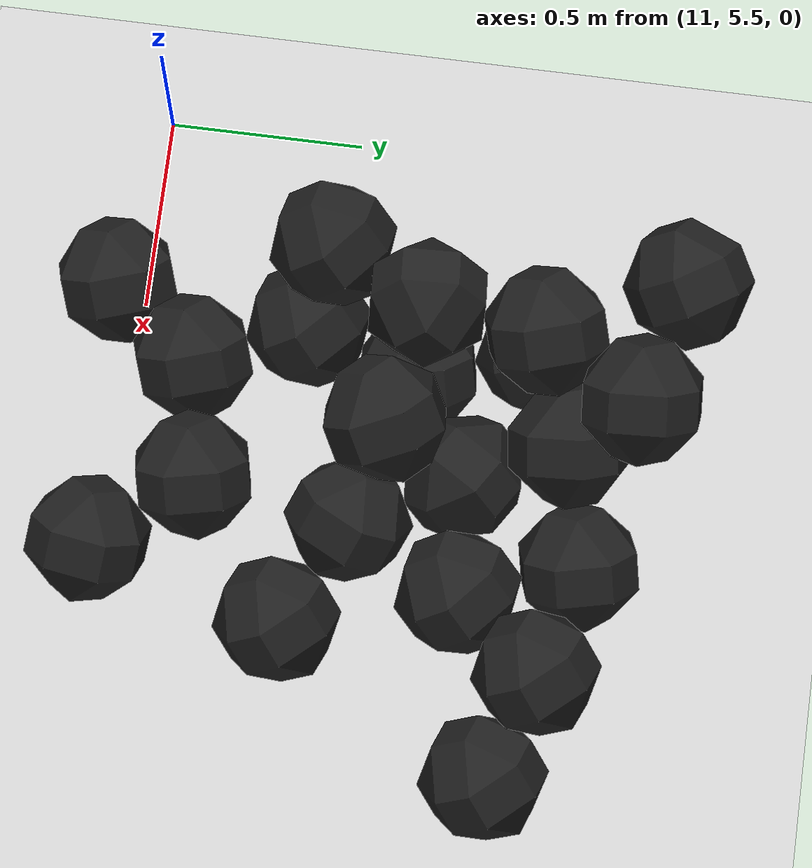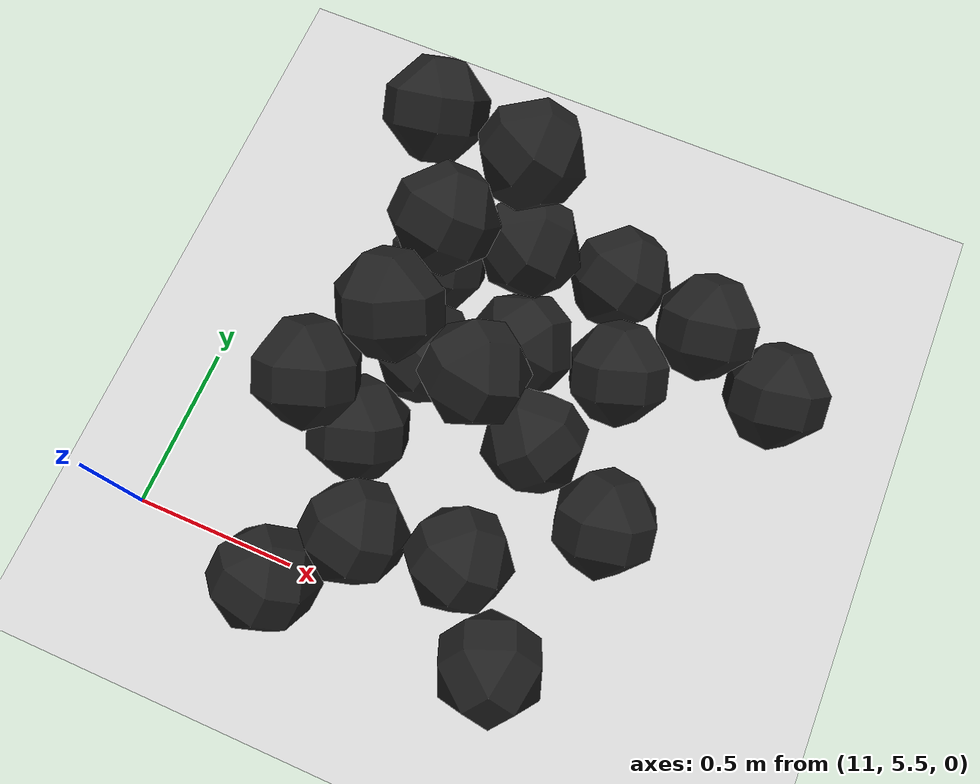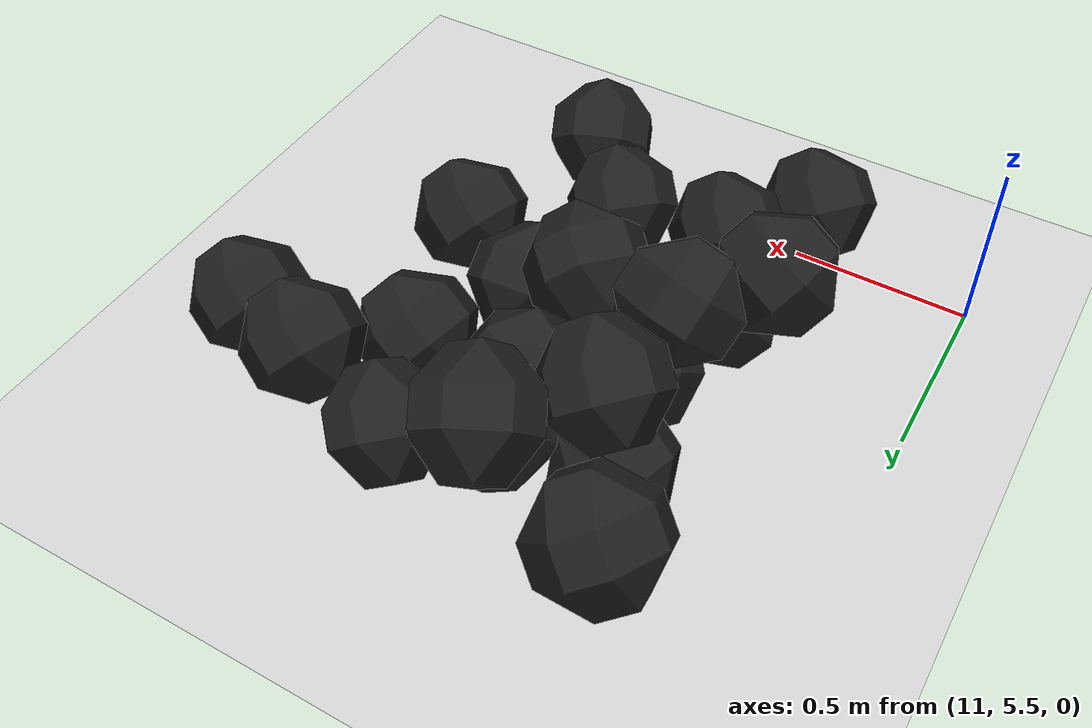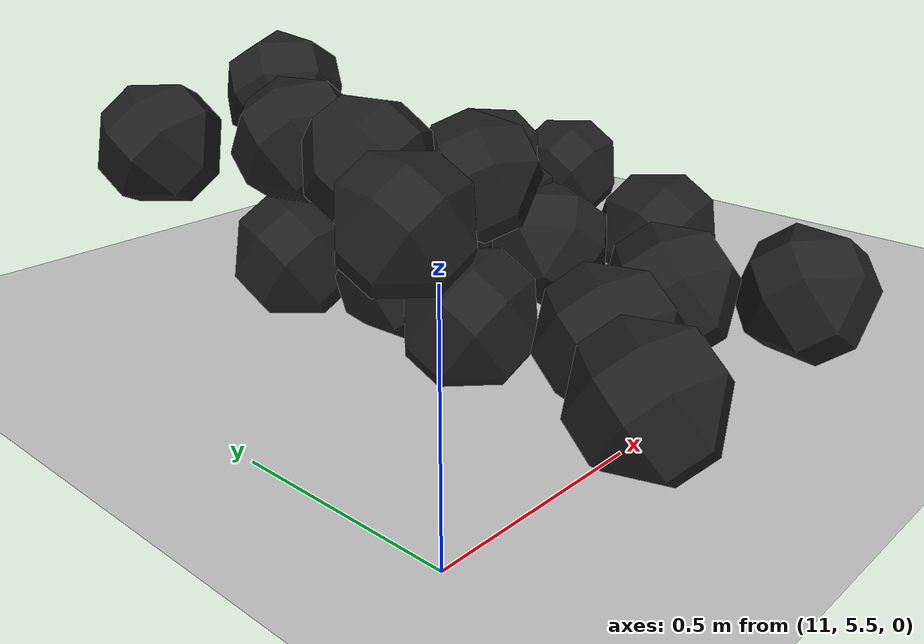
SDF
<sdf version="1.7">
 <world name="default">
  <model name="ground_plane">
   <static>1</static>
   <link name="link">
    <collision name="collision">
     <geometry><plane><normal>0 0 1</normal><size>100 100</size></plane></geometry>
     <surface><friction><ode><mu>100</mu><mu2>50</mu2></ode></friction></surface>
    </collision>
    <visual name="visual">
     <cast_shadows>0</cast_shadows>
     <geometry><plane><normal>0 0 1</normal><size>100 100</size></plane></geometry>
     <material>
      <script><uri>file://media/materials/scripts/gazebo.material</uri><name>Gazebo/Grey</name></script>
     </material>
    </visual>
   </link>
  </model>
  <model name="haoduomiantiaa_3">
   <link name="link_0">
    <inertial>
     <mass>0.2</mass>
     <inertia>
      <ixx>0.166667</ixx>
      <ixy>0</ixy>
      <ixz>0</ixz>
      <iyy>0.166667</iyy>
      <iyz>0</iyz>
      <izz>0.166667</izz>
     </inertia>
    </inertial>
    <visual name="visual">
     <geometry>
      <mesh>
       <uri>/home/lihaoyang/catkin_ws/src/pudong_gazebo/world/stl/haoduomianti.stl</uri>
       <scale>1 1 1</scale>
      </mesh>
     </geometry>
     <material>
      <lighting>1</lighting>
      <script><uri>file://media/materials/scripts/gazebo.material</uri><name>Gazebo/Black</name></script>
      <shader type="pixel"><normal_map>__default__</normal_map></shader>
      <ambient>0.3 0.3 0.3 1</ambient>
      <diffuse>0.7 0.7 0.7 1</diffuse>
      <specular>0.01 0.01 0.01 1</specular>
      <emissive>0 0 0 1</emissive>
     </material>
    </visual>
    <collision name="collision">
     <geometry>
      <mesh>
       <uri>/home/lihaoyang/catkin_ws/src/pudong_gazebo/world/stl/haoduomianti.stl</uri>
       <scale>1 1 1</scale>
      </mesh>
     </geometry>
     <surface>
      <friction>
       <ode><mu>1</mu><mu2>1</mu2><fdir1>0 0 0</fdir1><slip1>0</slip1><slip2>0</slip2></ode>
       <torsional>
        <coefficient>1</coefficient>
        <patch_radius>0</patch_radius>
        <surface_radius>0</surface_radius>
        <use_patch_radius>1</use_patch_radius>
        <ode><slip>0</slip></ode>
       </torsional>
      </friction>
      <bounce><restitution_coefficient>0</restitution_coefficient><threshold>1e+06</threshold></bounce>
      <contact>
       <collide_without_contact>0</collide_without_contact>
       <collide_without_contact_bitmask>1</collide_without_contact_bitmask>
       <collide_bitmask>1</collide_bitmask>
       <ode>
        <soft_cfm>0</soft_cfm>
        <soft_erp>0.2</soft_erp>
        <kp>1e+13</kp>
        <kd>1</kd>
        <max_vel>0.01</max_vel>
        <min_depth>0</min_depth>
       </ode>
       <bullet>
        <split_impulse>1</split_impulse>
        <split_impulse_penetration_threshold>-0.01</split_impulse_penetration_threshold>
        <soft_cfm>0</soft_cfm>
        <soft_erp>0.2</soft_erp>
        <kp>1e+13</kp>
        <kd>1</kd>
       </bullet>
      </contact>
     </surface>
    </collision>
   </link>
   <static>0</static>
   <pose>11.7701 6.44586 -0.075902 0.072575 -0.784094 -2.18516</pose>
  </model>
  <model name="haoduomiantiaa_8">
   <link name="link_0">
    <inertial>
     <mass>0.2</mass>
     <inertia>
      <ixx>0.166667</ixx>
      <ixy>0</ixy>
      <ixz>0</ixz>
      <iyy>0.166667</iyy>
      <iyz>0</iyz>
      <izz>0.166667</izz>
     </inertia>
    </inertial>
    <visual name="visual">
     <geometry>
      <mesh>
       <uri>/home/lihaoyang/catkin_ws/src/pudong_gazebo/world/stl/haoduomianti.stl</uri>
       <scale>1 1 1</scale>
      </mesh>
     </geometry>
     <material>
      <lighting>1</lighting>
      <script><uri>file://media/materials/scripts/gazebo.material</uri><name>Gazebo/Black</name></script>
      <shader type="pixel"><normal_map>__default__</normal_map></shader>
      <ambient>0.3 0.3 0.3 1</ambient>
      <diffuse>0.7 0.7 0.7 1</diffuse>
      <specular>0.01 0.01 0.01 1</specular>
      <emissive>0 0 0 1</emissive>
     </material>
    </visual>
    <collision name="collision">
     <geometry>
      <mesh>
       <uri>/home/lihaoyang/catkin_ws/src/pudong_gazebo/world/stl/haoduomianti.stl</uri>
       <scale>1 1 1</scale>
      </mesh>
     </geometry>
     <surface>
      <friction>
       <ode><mu>1</mu><mu2>1</mu2><fdir1>0 0 0</fdir1><slip1>0</slip1><slip2>0</slip2></ode>
       <torsional>
        <coefficient>1</coefficient>
        <patch_radius>0</patch_radius>
        <surface_radius>0</surface_radius>
        <use_patch_radius>1</use_patch_radius>
        <ode><slip>0</slip></ode>
       </torsional>
      </friction>
      <bounce><restitution_coefficient>0</restitution_coefficient><threshold>1e+06</threshold></bounce>
      <contact>
       <collide_without_contact>0</collide_without_contact>
       <collide_without_contact_bitmask>1</collide_without_contact_bitmask>
       <collide_bitmask>1</collide_bitmask>
       <ode>
        <soft_cfm>0</soft_cfm>
        <soft_erp>0.2</soft_erp>
        <kp>1e+13</kp>
        <kd>1</kd>
        <max_vel>0.01</max_vel>
        <min_depth>0</min_depth>
       </ode>
       <bullet>
        <split_impulse>1</split_impulse>
        <split_impulse_penetration_threshold>-0.01</split_impulse_penetration_threshold>
        <soft_cfm>0</soft_cfm>
        <soft_erp>0.2</soft_erp>
        <kp>1e+13</kp>
        <kd>1</kd>
       </bullet>
      </contact>
     </surface>
    </collision>
   </link>
   <static>0</static>
   <pose>11.5428 5.93414 -0.115347 0.785262 -0.61551 -2.32662</pose>
  </model>
  <model name="haoduomiantiaa_14">
   <link name="link_0">
    <inertial>
     <mass>0.2</mass>
     <inertia>
      <ixx>0.166667</ixx>
      <ixy>0</ixy>
      <ixz>0</ixz>
      <iyy>0.166667</iyy>
      <iyz>0</iyz>
      <izz>0.166667</izz>
     </inertia>
    </inertial>
    <visual name="visual">
     <geometry>
      <mesh>
       <uri>/home/lihaoyang/catkin_ws/src/pudong_gazebo/world/stl/haoduomianti.stl</uri>
       <scale>1 1 1</scale>
      </mesh>
     </geometry>
     <material>
      <lighting>1</lighting>
      <script><uri>file://media/materials/scripts/gazebo.material</uri><name>Gazebo/Black</name></script>
      <shader type="pixel"><normal_map>__default__</normal_map></shader>
      <ambient>0.3 0.3 0.3 1</ambient>
      <diffuse>0.7 0.7 0.7 1</diffuse>
      <specular>0.01 0.01 0.01 1</specular>
      <emissive>0 0 0 1</emissive>
     </material>
    </visual>
    <collision name="collision">
     <geometry>
      <mesh>
       <uri>/home/lihaoyang/catkin_ws/src/pudong_gazebo/world/stl/haoduomianti.stl</uri>
       <scale>1 1 1</scale>
      </mesh>
     </geometry>
     <surface>
      <friction>
       <ode><mu>1</mu><mu2>1</mu2><fdir1>0 0 0</fdir1><slip1>0</slip1><slip2>0</slip2></ode>
       <torsional>
        <coefficient>1</coefficient>
        <patch_radius>0</patch_radius>
        <surface_radius>0</surface_radius>
        <use_patch_radius>1</use_patch_radius>
        <ode><slip>0</slip></ode>
       </torsional>
      </friction>
      <bounce><restitution_coefficient>0</restitution_coefficient><threshold>1e+06</threshold></bounce>
      <contact>
       <collide_without_contact>0</collide_without_contact>
       <collide_without_contact_bitmask>1</collide_without_contact_bitmask>
       <collide_bitmask>1</collide_bitmask>
       <ode>
        <soft_cfm>0</soft_cfm>
        <soft_erp>0.2</soft_erp>
        <kp>1e+13</kp>
        <kd>1</kd>
        <max_vel>0.01</max_vel>
        <min_depth>0</min_depth>
       </ode>
       <bullet>
        <split_impulse>1</split_impulse>
        <split_impulse_penetration_threshold>-0.01</split_impulse_penetration_threshold>
        <soft_cfm>0</soft_cfm>
        <soft_erp>0.2</soft_erp>
        <kp>1e+13</kp>
        <kd>1</kd>
       </bullet>
      </contact>
     </surface>
    </collision>
   </link>
   <static>0</static>
   <pose>11.5437 6.52491 -0.115516 0.785438 -0.615586 -0.31702</pose>
  </model>
  <model name="haoduomiantiaa_16">
   <link name="link_0">
    <inertial>
     <mass>0.2</mass>
     <inertia>
      <ixx>0.166667</ixx>
      <ixy>0</ixy>
      <ixz>0</ixz>
      <iyy>0.166667</iyy>
      <iyz>0</iyz>
      <izz>0.166667</izz>
     </inertia>
    </inertial>
    <visual name="visual">
     <geometry>
      <mesh>
       <uri>/home/lihaoyang/catkin_ws/src/pudong_gazebo/world/stl/haoduomianti.stl</uri>
       <scale>1 1 1</scale>
      </mesh>
     </geometry>
     <material>
      <lighting>1</lighting>
      <script><uri>file://media/materials/scripts/gazebo.material</uri><name>Gazebo/Black</name></script>
      <shader type="pixel"><normal_map>__default__</normal_map></shader>
      <ambient>0.3 0.3 0.3 1</ambient>
      <diffuse>0.7 0.7 0.7 1</diffuse>
      <specular>0.01 0.01 0.01 1</specular>
      <emissive>0 0 0 1</emissive>
     </material>
    </visual>
    <collision name="collision">
     <geometry>
      <mesh>
       <uri>/home/lihaoyang/catkin_ws/src/pudong_gazebo/world/stl/haoduomianti.stl</uri>
       <scale>1 1 1</scale>
      </mesh>
     </geometry>
     <surface>
      <friction>
       <ode><mu>1</mu><mu2>1</mu2><fdir1>0 0 0</fdir1><slip1>0</slip1><slip2>0</slip2></ode>
       <torsional>
        <coefficient>1</coefficient>
        <patch_radius>0</patch_radius>
        <surface_radius>0</surface_radius>
        <use_patch_radius>1</use_patch_radius>
        <ode><slip>0</slip></ode>
       </torsional>
      </friction>
      <bounce><restitution_coefficient>0</restitution_coefficient><threshold>1e+06</threshold></bounce>
      <contact>
       <collide_without_contact>0</collide_without_contact>
       <collide_without_contact_bitmask>1</collide_without_contact_bitmask>
       <collide_bitmask>1</collide_bitmask>
       <ode>
        <soft_cfm>0</soft_cfm>
        <soft_erp>0.2</soft_erp>
        <kp>1e+13</kp>
        <kd>1</kd>
        <max_vel>0.01</max_vel>
        <min_depth>0</min_depth>
       </ode>
       <bullet>
        <split_impulse>1</split_impulse>
        <split_impulse_penetration_threshold>-0.01</split_impulse_penetration_threshold>
        <soft_cfm>0</soft_cfm>
        <soft_erp>0.2</soft_erp>
        <kp>1e+13</kp>
        <kd>1</kd>
       </bullet>
      </contact>
     </surface>
    </collision>
   </link>
   <static>0</static>
   <pose>11.818 6.69765 0.005674 0.466409 -0.532404 -2.99413</pose>
  </model>
  <model name="haoduomiantiaa_22">
   <link name="link_0">
    <inertial>
     <mass>0.2</mass>
     <inertia>
      <ixx>0.166667</ixx>
      <ixy>0</ixy>
      <ixz>0</ixz>
      <iyy>0.166667</iyy>
      <iyz>0</iyz>
      <izz>0.166667</izz>
     </inertia>
    </inertial>
    <visual name="visual">
     <geometry>
      <mesh>
       <uri>/home/lihaoyang/catkin_ws/src/pudong_gazebo/world/stl/haoduomianti.stl</uri>
       <scale>1 1 1</scale>
      </mesh>
     </geometry>
     <material>
      <lighting>1</lighting>
      <script><uri>file://media/materials/scripts/gazebo.material</uri><name>Gazebo/Black</name></script>
      <shader type="pixel"><normal_map>__default__</normal_map></shader>
      <ambient>0.3 0.3 0.3 1</ambient>
      <diffuse>0.7 0.7 0.7 1</diffuse>
      <specular>0.01 0.01 0.01 1</specular>
      <emissive>0 0 0 1</emissive>
     </material>
    </visual>
    <collision name="collision">
     <geometry>
      <mesh>
       <uri>/home/lihaoyang/catkin_ws/src/pudong_gazebo/world/stl/haoduomianti.stl</uri>
       <scale>1 1 1</scale>
      </mesh>
     </geometry>
     <surface>
      <friction>
       <ode><mu>1</mu><mu2>1</mu2><fdir1>0 0 0</fdir1><slip1>0</slip1><slip2>0</slip2></ode>
       <torsional>
        <coefficient>1</coefficient>
        <patch_radius>0</patch_radius>
        <surface_radius>0</surface_radius>
        <use_patch_radius>1</use_patch_radius>
        <ode><slip>0</slip></ode>
       </torsional>
      </friction>
      <bounce><restitution_coefficient>0</restitution_coefficient><threshold>1e+06</threshold></bounce>
      <contact>
       <collide_without_contact>0</collide_without_contact>
       <collide_without_contact_bitmask>1</collide_without_contact_bitmask>
       <collide_bitmask>1</collide_bitmask>
       <ode>
        <soft_cfm>0</soft_cfm>
        <soft_erp>0.2</soft_erp>
        <kp>1e+13</kp>
        <kd>1</kd>
        <max_vel>0.01</max_vel>
        <min_depth>0</min_depth>
       </ode>
       <bullet>
        <split_impulse>1</split_impulse>
        <split_impulse_penetration_threshold>-0.01</split_impulse_penetration_threshold>
        <soft_cfm>0</soft_cfm>
        <soft_erp>0.2</soft_erp>
        <kp>1e+13</kp>
        <kd>1</kd>
       </bullet>
      </contact>
     </surface>
    </collision>
   </link>
   <static>0</static>
   <pose>12.0839 6.68664 -0.115573 0.785491 -0.615513 -0.822449</pose>
  </model>
  <model name="haoduomiantiaa_40">
   <link name="link_0">
    <inertial>
     <mass>0.2</mass>
     <inertia>
      <ixx>0.166667</ixx>
      <ixy>0</ixy>
      <ixz>0</ixz>
      <iyy>0.166667</iyy>
      <iyz>0</iyz>
      <izz>0.166667</izz>
     </inertia>
    </inertial>
    <visual name="visual">
     <geometry>
      <mesh>
       <uri>/home/lihaoyang/catkin_ws/src/pudong_gazebo/world/stl/haoduomianti.stl</uri>
       <scale>1 1 1</scale>
      </mesh>
     </geometry>
     <material>
      <lighting>1</lighting>
      <script><uri>file://media/materials/scripts/gazebo.material</uri><name>Gazebo/Black</name></script>
      <shader type="pixel"><normal_map>__default__</normal_map></shader>
      <ambient>0.3 0.3 0.3 1</ambient>
      <diffuse>0.7 0.7 0.7 1</diffuse>
      <specular>0.01 0.01 0.01 1</specular>
      <emissive>0 0 0 1</emissive>
     </material>
    </visual>
    <collision name="collision">
     <geometry>
      <mesh>
       <uri>/home/lihaoyang/catkin_ws/src/pudong_gazebo/world/stl/haoduomianti.stl</uri>
       <scale>1 1 1</scale>
      </mesh>
     </geometry>
     <surface>
      <friction>
       <ode><mu>1</mu><mu2>1</mu2><fdir1>0 0 0</fdir1><slip1>0</slip1><slip2>0</slip2></ode>
       <torsional>
        <coefficient>1</coefficient>
        <patch_radius>0</patch_radius>
        <surface_radius>0</surface_radius>
        <use_patch_radius>1</use_patch_radius>
        <ode><slip>0</slip></ode>
       </torsional>
      </friction>
      <bounce><restitution_coefficient>0</restitution_coefficient><threshold>1e+06</threshold></bounce>
      <contact>
       <collide_without_contact>0</collide_without_contact>
       <collide_without_contact_bitmask>1</collide_without_contact_bitmask>
       <collide_bitmask>1</collide_bitmask>
       <ode>
        <soft_cfm>0</soft_cfm>
        <soft_erp>0.2</soft_erp>
        <kp>1e+13</kp>
        <kd>1</kd>
        <max_vel>0.01</max_vel>
        <min_depth>0</min_depth>
       </ode>
       <bullet>
        <split_impulse>1</split_impulse>
        <split_impulse_penetration_threshold>-0.01</split_impulse_penetration_threshold>
        <soft_cfm>0</soft_cfm>
        <soft_erp>0.2</soft_erp>
        <kp>1e+13</kp>
        <kd>1</kd>
       </bullet>
      </contact>
     </surface>
    </collision>
   </link>
   <static>0</static>
   <pose>12.6428 6.51263 -0.115121 0.7854 -0.60704 -0.327095</pose>
  </model>
  <model name="haoduomiantiaa_42">
   <link name="link_0">
    <inertial>
     <mass>0.2</mass>
     <inertia>
      <ixx>0.166667</ixx>
      <ixy>0</ixy>
      <ixz>0</ixz>
      <iyy>0.166667</iyy>
      <iyz>0</iyz>
      <izz>0.166667</izz>
     </inertia>
    </inertial>
    <visual name="visual">
     <geometry>
      <mesh>
       <uri>/home/lihaoyang/catkin_ws/src/pudong_gazebo/world/stl/haoduomianti.stl</uri>
       <scale>1 1 1</scale>
      </mesh>
     </geometry>
     <material>
      <lighting>1</lighting>
      <script><uri>file://media/materials/scripts/gazebo.material</uri><name>Gazebo/Black</name></script>
      <shader type="pixel"><normal_map>__default__</normal_map></shader>
      <ambient>0.3 0.3 0.3 1</ambient>
      <diffuse>0.7 0.7 0.7 1</diffuse>
      <specular>0.01 0.01 0.01 1</specular>
      <emissive>0 0 0 1</emissive>
     </material>
    </visual>
    <collision name="collision">
     <geometry>
      <mesh>
       <uri>/home/lihaoyang/catkin_ws/src/pudong_gazebo/world/stl/haoduomianti.stl</uri>
       <scale>1 1 1</scale>
      </mesh>
     </geometry>
     <surface>
      <friction>
       <ode><mu>1</mu><mu2>1</mu2><fdir1>0 0 0</fdir1><slip1>0</slip1><slip2>0</slip2></ode>
       <torsional>
        <coefficient>1</coefficient>
        <patch_radius>0</patch_radius>
        <surface_radius>0</surface_radius>
        <use_patch_radius>1</use_patch_radius>
        <ode><slip>0</slip></ode>
       </torsional>
      </friction>
      <bounce><restitution_coefficient>0</restitution_coefficient><threshold>1e+06</threshold></bounce>
      <contact>
       <collide_without_contact>0</collide_without_contact>
       <collide_without_contact_bitmask>1</collide_without_contact_bitmask>
       <collide_bitmask>1</collide_bitmask>
       <ode>
        <soft_cfm>0</soft_cfm>
        <soft_erp>0.2</soft_erp>
        <kp>1e+13</kp>
        <kd>1</kd>
        <max_vel>0.01</max_vel>
        <min_depth>0</min_depth>
       </ode>
       <bullet>
        <split_impulse>1</split_impulse>
        <split_impulse_penetration_threshold>-0.01</split_impulse_penetration_threshold>
        <soft_cfm>0</soft_cfm>
        <soft_erp>0.2</soft_erp>
        <kp>1e+13</kp>
        <kd>1</kd>
       </bullet>
      </contact>
     </surface>
    </collision>
   </link>
   <static>0</static>
   <pose>11.9691 5.69691 -0.115469 0.785398 -0.615464 1.25776</pose>
  </model>
  <model name="haoduomiantiaa_48">
   <link name="link_0">
    <inertial>
     <mass>0.2</mass>
     <inertia>
      <ixx>0.166667</ixx>
      <ixy>0</ixy>
      <ixz>0</ixz>
      <iyy>0.166667</iyy>
      <iyz>0</iyz>
      <izz>0.166667</izz>
     </inertia>
    </inertial>
    <visual name="visual">
     <geometry>
      <mesh>
       <uri>/home/lihaoyang/catkin_ws/src/pudong_gazebo/world/stl/haoduomianti.stl</uri>
       <scale>1 1 1</scale>
      </mesh>
     </geometry>
     <material>
      <lighting>1</lighting>
      <script><uri>file://media/materials/scripts/gazebo.material</uri><name>Gazebo/Black</name></script>
      <shader type="pixel"><normal_map>__default__</normal_map></shader>
      <ambient>0.3 0.3 0.3 1</ambient>
      <diffuse>0.7 0.7 0.7 1</diffuse>
      <specular>0.01 0.01 0.01 1</specular>
      <emissive>0 0 0 1</emissive>
     </material>
    </visual>
    <collision name="collision">
     <geometry>
      <mesh>
       <uri>/home/lihaoyang/catkin_ws/src/pudong_gazebo/world/stl/haoduomianti.stl</uri>
       <scale>1 1 1</scale>
      </mesh>
     </geometry>
     <surface>
      <friction>
       <ode><mu>1</mu><mu2>1</mu2><fdir1>0 0 0</fdir1><slip1>0</slip1><slip2>0</slip2></ode>
       <torsional>
        <coefficient>1</coefficient>
        <patch_radius>0</patch_radius>
        <surface_radius>0</surface_radius>
        <use_patch_radius>1</use_patch_radius>
        <ode><slip>0</slip></ode>
       </torsional>
      </friction>
      <bounce><restitution_coefficient>0</restitution_coefficient><threshold>1e+06</threshold></bounce>
      <contact>
       <collide_without_contact>0</collide_without_contact>
       <collide_without_contact_bitmask>1</collide_without_contact_bitmask>
       <collide_bitmask>1</collide_bitmask>
       <ode>
        <soft_cfm>0</soft_cfm>
        <soft_erp>0.2</soft_erp>
        <kp>1e+13</kp>
        <kd>1</kd>
        <max_vel>0.01</max_vel>
        <min_depth>0</min_depth>
       </ode>
       <bullet>
        <split_impulse>1</split_impulse>
        <split_impulse_penetration_threshold>-0.01</split_impulse_penetration_threshold>
        <soft_cfm>0</soft_cfm>
        <soft_erp>0.2</soft_erp>
        <kp>1e+13</kp>
        <kd>1</kd>
       </bullet>
      </contact>
     </surface>
    </collision>
   </link>
   <static>0</static>
   <pose>11.6632 5.65329 -0.115488 0.785407 -0.615471 -0.722894</pose>
  </model>
  <model name="haoduomiantiaa_61">
   <link name="link_0">
    <inertial>
     <mass>0.2</mass>
     <inertia>
      <ixx>0.166667</ixx>
      <ixy>0</ixy>
      <ixz>0</ixz>
      <iyy>0.166667</iyy>
      <iyz>0</iyz>
      <izz>0.166667</izz>
     </inertia>
    </inertial>
    <visual name="visual">
     <geometry>
      <mesh>
       <uri>/home/lihaoyang/catkin_ws/src/pudong_gazebo/world/stl/haoduomianti.stl</uri>
       <scale>1 1 1</scale>
      </mesh>
     </geometry>
     <material>
      <lighting>1</lighting>
      <script><uri>file://media/materials/scripts/gazebo.material</uri><name>Gazebo/Black</name></script>
      <shader type="pixel"><normal_map>__default__</normal_map></shader>
      <ambient>0.3 0.3 0.3 1</ambient>
      <diffuse>0.7 0.7 0.7 1</diffuse>
      <specular>0.01 0.01 0.01 1</specular>
      <emissive>0 0 0 1</emissive>
     </material>
    </visual>
    <collision name="collision">
     <geometry>
      <mesh>
       <uri>/home/lihaoyang/catkin_ws/src/pudong_gazebo/world/stl/haoduomianti.stl</uri>
       <scale>1 1 1</scale>
      </mesh>
     </geometry>
     <surface>
      <friction>
       <ode><mu>1</mu><mu2>1</mu2><fdir1>0 0 0</fdir1><slip1>0</slip1><slip2>0</slip2></ode>
       <torsional>
        <coefficient>1</coefficient>
        <patch_radius>0</patch_radius>
        <surface_radius>0</surface_radius>
        <use_patch_radius>1</use_patch_radius>
        <ode><slip>0</slip></ode>
       </torsional>
      </friction>
      <bounce><restitution_coefficient>0</restitution_coefficient><threshold>1e+06</threshold></bounce>
      <contact>
       <collide_without_contact>0</collide_without_contact>
       <collide_without_contact_bitmask>1</collide_without_contact_bitmask>
       <collide_bitmask>1</collide_bitmask>
       <ode>
        <soft_cfm>0</soft_cfm>
        <soft_erp>0.2</soft_erp>
        <kp>1e+13</kp>
        <kd>1</kd>
        <max_vel>0.01</max_vel>
        <min_depth>0</min_depth>
       </ode>
       <bullet>
        <split_impulse>1</split_impulse>
        <split_impulse_penetration_threshold>-0.01</split_impulse_penetration_threshold>
        <soft_cfm>0</soft_cfm>
        <soft_erp>0.2</soft_erp>
        <kp>1e+13</kp>
        <kd>1</kd>
       </bullet>
      </contact>
     </surface>
    </collision>
   </link>
   <static>0</static>
   <pose>12.0349 6.10033 -0.115753 0.785469 -0.615435 0.576808</pose>
  </model>
  <model name="haoduomiantiaa_66">
   <link name="link_0">
    <inertial>
     <mass>0.2</mass>
     <inertia>
      <ixx>0.166667</ixx>
      <ixy>0</ixy>
      <ixz>0</ixz>
      <iyy>0.166667</iyy>
      <iyz>0</iyz>
      <izz>0.166667</izz>
     </inertia>
    </inertial>
    <visual name="visual">
     <geometry>
      <mesh>
       <uri>/home/lihaoyang/catkin_ws/src/pudong_gazebo/world/stl/haoduomianti.stl</uri>
       <scale>1 1 1</scale>
      </mesh>
     </geometry>
     <material>
      <lighting>1</lighting>
      <script><uri>file://media/materials/scripts/gazebo.material</uri><name>Gazebo/Black</name></script>
      <shader type="pixel"><normal_map>__default__</normal_map></shader>
      <ambient>0.3 0.3 0.3 1</ambient>
      <diffuse>0.7 0.7 0.7 1</diffuse>
      <specular>0.01 0.01 0.01 1</specular>
      <emissive>0 0 0 1</emissive>
     </material>
    </visual>
    <collision name="collision">
     <geometry>
      <mesh>
       <uri>/home/lihaoyang/catkin_ws/src/pudong_gazebo/world/stl/haoduomianti.stl</uri>
       <scale>1 1 1</scale>
      </mesh>
     </geometry>
     <surface>
      <friction>
       <ode><mu>1</mu><mu2>1</mu2><fdir1>0 0 0</fdir1><slip1>0</slip1><slip2>0</slip2></ode>
       <torsional>
        <coefficient>1</coefficient>
        <patch_radius>0</patch_radius>
        <surface_radius>0</surface_radius>
        <use_patch_radius>1</use_patch_radius>
        <ode><slip>0</slip></ode>
       </torsional>
      </friction>
      <bounce><restitution_coefficient>0</restitution_coefficient><threshold>1e+06</threshold></bounce>
      <contact>
       <collide_without_contact>0</collide_without_contact>
       <collide_without_contact_bitmask>1</collide_without_contact_bitmask>
       <collide_bitmask>1</collide_bitmask>
       <ode>
        <soft_cfm>0</soft_cfm>
        <soft_erp>0.2</soft_erp>
        <kp>1e+13</kp>
        <kd>1</kd>
        <max_vel>0.01</max_vel>
        <min_depth>0</min_depth>
       </ode>
       <bullet>
        <split_impulse>1</split_impulse>
        <split_impulse_penetration_threshold>-0.01</split_impulse_penetration_threshold>
        <soft_cfm>0</soft_cfm>
        <soft_erp>0.2</soft_erp>
        <kp>1e+13</kp>
        <kd>1</kd>
       </bullet>
      </contact>
     </surface>
    </collision>
   </link>
   <static>0</static>
   <pose>12.312 5.95396 -0.115495 0.785354 -0.615483 -2.41831</pose>
  </model>
  <model name="haoduomiantiaa_79">
   <link name="link_0">
    <inertial>
     <mass>0.2</mass>
     <inertia>
      <ixx>0.166667</ixx>
      <ixy>0</ixy>
      <ixz>0</ixz>
      <iyy>0.166667</iyy>
      <iyz>0</iyz>
      <izz>0.166667</izz>
     </inertia>
    </inertial>
    <visual name="visual">
     <geometry>
      <mesh>
       <uri>/home/lihaoyang/catkin_ws/src/pudong_gazebo/world/stl/haoduomianti.stl</uri>
       <scale>1 1 1</scale>
      </mesh>
     </geometry>
     <material>
      <lighting>1</lighting>
      <script><uri>file://media/materials/scripts/gazebo.material</uri><name>Gazebo/Black</name></script>
      <shader type="pixel"><normal_map>__default__</normal_map></shader>
      <ambient>0.3 0.3 0.3 1</ambient>
      <diffuse>0.7 0.7 0.7 1</diffuse>
      <specular>0.01 0.01 0.01 1</specular>
      <emissive>0 0 0 1</emissive>
     </material>
    </visual>
    <collision name="collision">
     <geometry>
      <mesh>
       <uri>/home/lihaoyang/catkin_ws/src/pudong_gazebo/world/stl/haoduomianti.stl</uri>
       <scale>1 1 1</scale>
      </mesh>
     </geometry>
     <surface>
      <friction>
       <ode><mu>1</mu><mu2>1</mu2><fdir1>0 0 0</fdir1><slip1>0</slip1><slip2>0</slip2></ode>
       <torsional>
        <coefficient>1</coefficient>
        <patch_radius>0</patch_radius>
        <surface_radius>0</surface_radius>
        <use_patch_radius>1</use_patch_radius>
        <ode><slip>0</slip></ode>
       </torsional>
      </friction>
      <bounce><restitution_coefficient>0</restitution_coefficient><threshold>1e+06</threshold></bounce>
      <contact>
       <collide_without_contact>0</collide_without_contact>
       <collide_without_contact_bitmask>1</collide_without_contact_bitmask>
       <collide_bitmask>1</collide_bitmask>
       <ode>
        <soft_cfm>0</soft_cfm>
        <soft_erp>0.2</soft_erp>
        <kp>1e+13</kp>
        <kd>1</kd>
        <max_vel>0.01</max_vel>
        <min_depth>0</min_depth>
       </ode>
       <bullet>
        <split_impulse>1</split_impulse>
        <split_impulse_penetration_threshold>-0.01</split_impulse_penetration_threshold>
        <soft_cfm>0</soft_cfm>
        <soft_erp>0.2</soft_erp>
        <kp>1e+13</kp>
        <kd>1</kd>
       </bullet>
      </contact>
     </surface>
    </collision>
   </link>
   <static>0</static>
   <pose>11.5766 6.53735 0.174383 0.754652 -0.629694 1.37831</pose>
  </model>
  <model name="haoduomiantiaa_90">
   <link name="link_0">
    <inertial>
     <mass>0.2</mass>
     <inertia>
      <ixx>0.166667</ixx>
      <ixy>0</ixy>
      <ixz>0</ixz>
      <iyy>0.166667</iyy>
      <iyz>0</iyz>
      <izz>0.166667</izz>
     </inertia>
    </inertial>
    <visual name="visual">
     <geometry>
      <mesh>
       <uri>/home/lihaoyang/catkin_ws/src/pudong_gazebo/world/stl/haoduomianti.stl</uri>
       <scale>1 1 1</scale>
      </mesh>
     </geometry>
     <material>
      <lighting>1</lighting>
      <script><uri>file://media/materials/scripts/gazebo.material</uri><name>Gazebo/Black</name></script>
      <shader type="pixel"><normal_map>__default__</normal_map></shader>
      <ambient>0.3 0.3 0.3 1</ambient>
      <diffuse>0.7 0.7 0.7 1</diffuse>
      <specular>0.01 0.01 0.01 1</specular>
      <emissive>0 0 0 1</emissive>
     </material>
    </visual>
    <collision name="collision">
     <geometry>
      <mesh>
       <uri>/home/lihaoyang/catkin_ws/src/pudong_gazebo/world/stl/haoduomianti.stl</uri>
       <scale>1 1 1</scale>
      </mesh>
     </geometry>
     <surface>
      <friction>
       <ode><mu>1</mu><mu2>1</mu2><fdir1>0 0 0</fdir1><slip1>0</slip1><slip2>0</slip2></ode>
       <torsional>
        <coefficient>1</coefficient>
        <patch_radius>0</patch_radius>
        <surface_radius>0</surface_radius>
        <use_patch_radius>1</use_patch_radius>
        <ode><slip>0</slip></ode>
       </torsional>
      </friction>
      <bounce><restitution_coefficient>0</restitution_coefficient><threshold>1e+06</threshold></bounce>
      <contact>
       <collide_without_contact>0</collide_without_contact>
       <collide_without_contact_bitmask>1</collide_without_contact_bitmask>
       <collide_bitmask>1</collide_bitmask>
       <ode>
        <soft_cfm>0</soft_cfm>
        <soft_erp>0.2</soft_erp>
        <kp>1e+13</kp>
        <kd>1</kd>
        <max_vel>0.01</max_vel>
        <min_depth>0</min_depth>
       </ode>
       <bullet>
        <split_impulse>1</split_impulse>
        <split_impulse_penetration_threshold>-0.01</split_impulse_penetration_threshold>
        <soft_cfm>0</soft_cfm>
        <soft_erp>0.2</soft_erp>
        <kp>1e+13</kp>
        <kd>1</kd>
       </bullet>
      </contact>
     </surface>
    </collision>
   </link>
   <static>0</static>
   <pose>11.6114 6.24607 -0.111466 0.785436 -0.520561 -0.864616</pose>
  </model>
  <model name="haoduomiantiaa_100">
   <link name="link_0">
    <inertial>
     <mass>0.2</mass>
     <inertia>
      <ixx>0.166667</ixx>
      <ixy>0</ixy>
      <ixz>0</ixz>
      <iyy>0.166667</iyy>
      <iyz>0</iyz>
      <izz>0.166667</izz>
     </inertia>
    </inertial>
    <visual name="visual">
     <geometry>
      <mesh>
       <uri>/home/lihaoyang/catkin_ws/src/pudong_gazebo/world/stl/haoduomianti.stl</uri>
       <scale>1 1 1</scale>
      </mesh>
     </geometry>
     <material>
      <lighting>1</lighting>
      <script><uri>file://media/materials/scripts/gazebo.material</uri><name>Gazebo/Black</name></script>
      <shader type="pixel"><normal_map>__default__</normal_map></shader>
      <ambient>0.3 0.3 0.3 1</ambient>
      <diffuse>0.7 0.7 0.7 1</diffuse>
      <specular>0.01 0.01 0.01 1</specular>
      <emissive>0 0 0 1</emissive>
     </material>
    </visual>
    <collision name="collision">
     <geometry>
      <mesh>
       <uri>/home/lihaoyang/catkin_ws/src/pudong_gazebo/world/stl/haoduomianti.stl</uri>
       <scale>1 1 1</scale>
      </mesh>
     </geometry>
     <surface>
      <friction>
       <ode><mu>1</mu><mu2>1</mu2><fdir1>0 0 0</fdir1><slip1>0</slip1><slip2>0</slip2></ode>
       <torsional>
        <coefficient>1</coefficient>
        <patch_radius>0</patch_radius>
        <surface_radius>0</surface_radius>
        <use_patch_radius>1</use_patch_radius>
        <ode><slip>0</slip></ode>
       </torsional>
      </friction>
      <bounce><restitution_coefficient>0</restitution_coefficient><threshold>1e+06</threshold></bounce>
      <contact>
       <collide_without_contact>0</collide_without_contact>
       <collide_without_contact_bitmask>1</collide_without_contact_bitmask>
       <collide_bitmask>1</collide_bitmask>
       <ode>
        <soft_cfm>0</soft_cfm>
        <soft_erp>0.2</soft_erp>
        <kp>1e+13</kp>
        <kd>1</kd>
        <max_vel>0.01</max_vel>
        <min_depth>0</min_depth>
       </ode>
       <bullet>
        <split_impulse>1</split_impulse>
        <split_impulse_penetration_threshold>-0.01</split_impulse_penetration_threshold>
        <soft_cfm>0</soft_cfm>
        <soft_erp>0.2</soft_erp>
        <kp>1e+13</kp>
        <kd>1</kd>
       </bullet>
      </contact>
     </surface>
    </collision>
   </link>
   <static>0</static>
   <pose>11.4431 6.88605 0.142906 0.969164 -0.74857 -0.578404</pose>
  </model>
  <model name="haoduomiantiaa_103">
   <link name="link_0">
    <inertial>
     <mass>0.2</mass>
     <inertia>
      <ixx>0.166667</ixx>
      <ixy>0</ixy>
      <ixz>0</ixz>
      <iyy>0.166667</iyy>
      <iyz>0</iyz>
      <izz>0.166667</izz>
     </inertia>
    </inertial>
    <visual name="visual">
     <geometry>
      <mesh>
       <uri>/home/lihaoyang/catkin_ws/src/pudong_gazebo/world/stl/haoduomianti.stl</uri>
       <scale>1 1 1</scale>
      </mesh>
     </geometry>
     <material>
      <lighting>1</lighting>
      <script><uri>file://media/materials/scripts/gazebo.material</uri><name>Gazebo/Black</name></script>
      <shader type="pixel"><normal_map>__default__</normal_map></shader>
      <ambient>0.3 0.3 0.3 1</ambient>
      <diffuse>0.7 0.7 0.7 1</diffuse>
      <specular>0.01 0.01 0.01 1</specular>
      <emissive>0 0 0 1</emissive>
     </material>
    </visual>
    <collision name="collision">
     <geometry>
      <mesh>
       <uri>/home/lihaoyang/catkin_ws/src/pudong_gazebo/world/stl/haoduomianti.stl</uri>
       <scale>1 1 1</scale>
      </mesh>
     </geometry>
     <surface>
      <friction>
       <ode><mu>1</mu><mu2>1</mu2><fdir1>0 0 0</fdir1><slip1>0</slip1><slip2>0</slip2></ode>
       <torsional>
        <coefficient>1</coefficient>
        <patch_radius>0</patch_radius>
        <surface_radius>0</surface_radius>
        <use_patch_radius>1</use_patch_radius>
        <ode><slip>0</slip></ode>
       </torsional>
      </friction>
      <bounce><restitution_coefficient>0</restitution_coefficient><threshold>1e+06</threshold></bounce>
      <contact>
       <collide_without_contact>0</collide_without_contact>
       <collide_without_contact_bitmask>1</collide_without_contact_bitmask>
       <collide_bitmask>1</collide_bitmask>
       <ode>
        <soft_cfm>0</soft_cfm>
        <soft_erp>0.2</soft_erp>
        <kp>1e+13</kp>
        <kd>1</kd>
        <max_vel>0.01</max_vel>
        <min_depth>0</min_depth>
       </ode>
       <bullet>
        <split_impulse>1</split_impulse>
        <split_impulse_penetration_threshold>-0.01</split_impulse_penetration_threshold>
        <soft_cfm>0</soft_cfm>
        <soft_erp>0.2</soft_erp>
        <kp>1e+13</kp>
        <kd>1</kd>
       </bullet>
      </contact>
     </surface>
    </collision>
   </link>
   <static>0</static>
   <pose>11.4729 6.22374 0.185942 1.07815 -0.68746 1.96052</pose>
  </model>
  <model name="haoduomiantiaa_105">
   <link name="link_0">
    <inertial>
     <mass>0.2</mass>
     <inertia>
      <ixx>0.166667</ixx>
      <ixy>0</ixy>
      <ixz>0</ixz>
      <iyy>0.166667</iyy>
      <iyz>0</iyz>
      <izz>0.166667</izz>
     </inertia>
    </inertial>
    <visual name="visual">
     <geometry>
      <mesh>
       <uri>/home/lihaoyang/catkin_ws/src/pudong_gazebo/world/stl/haoduomianti.stl</uri>
       <scale>1 1 1</scale>
      </mesh>
     </geometry>
     <material>
      <lighting>1</lighting>
      <script><uri>file://media/materials/scripts/gazebo.material</uri><name>Gazebo/Black</name></script>
      <shader type="pixel"><normal_map>__default__</normal_map></shader>
      <ambient>0.3 0.3 0.3 1</ambient>
      <diffuse>0.7 0.7 0.7 1</diffuse>
      <specular>0.01 0.01 0.01 1</specular>
      <emissive>0 0 0 1</emissive>
     </material>
    </visual>
    <collision name="collision">
     <geometry>
      <mesh>
       <uri>/home/lihaoyang/catkin_ws/src/pudong_gazebo/world/stl/haoduomianti.stl</uri>
       <scale>1 1 1</scale>
      </mesh>
     </geometry>
     <surface>
      <friction>
       <ode><mu>1</mu><mu2>1</mu2><fdir1>0 0 0</fdir1><slip1>0</slip1><slip2>0</slip2></ode>
       <torsional>
        <coefficient>1</coefficient>
        <patch_radius>0</patch_radius>
        <surface_radius>0</surface_radius>
        <use_patch_radius>1</use_patch_radius>
        <ode><slip>0</slip></ode>
       </torsional>
      </friction>
      <bounce><restitution_coefficient>0</restitution_coefficient><threshold>1e+06</threshold></bounce>
      <contact>
       <collide_without_contact>0</collide_without_contact>
       <collide_without_contact_bitmask>1</collide_without_contact_bitmask>
       <collide_bitmask>1</collide_bitmask>
       <ode>
        <soft_cfm>0</soft_cfm>
        <soft_erp>0.2</soft_erp>
        <kp>1e+13</kp>
        <kd>1</kd>
        <max_vel>0.01</max_vel>
        <min_depth>0</min_depth>
       </ode>
       <bullet>
        <split_impulse>1</split_impulse>
        <split_impulse_penetration_threshold>-0.01</split_impulse_penetration_threshold>
        <soft_cfm>0</soft_cfm>
        <soft_erp>0.2</soft_erp>
        <kp>1e+13</kp>
        <kd>1</kd>
       </bullet>
      </contact>
     </surface>
    </collision>
   </link>
   <static>0</static>
   <pose>12.3812 6.62303 -0.04956 0.764123 -0.662023 1.76252</pose>
  </model>
  <model name="haoduomiantiaa_108">
   <link name="link_0">
    <inertial>
     <mass>0.2</mass>
     <inertia>
      <ixx>0.166667</ixx>
      <ixy>0</ixy>
      <ixz>0</ixz>
      <iyy>0.166667</iyy>
      <iyz>0</iyz>
      <izz>0.166667</izz>
     </inertia>
    </inertial>
    <visual name="visual">
     <geometry>
      <mesh>
       <uri>/home/lihaoyang/catkin_ws/src/pudong_gazebo/world/stl/haoduomianti.stl</uri>
       <scale>1 1 1</scale>
      </mesh>
     </geometry>
     <material>
      <lighting>1</lighting>
      <script><uri>file://media/materials/scripts/gazebo.material</uri><name>Gazebo/Black</name></script>
      <shader type="pixel"><normal_map>__default__</normal_map></shader>
      <ambient>0.3 0.3 0.3 1</ambient>
      <diffuse>0.7 0.7 0.7 1</diffuse>
      <specular>0.01 0.01 0.01 1</specular>
      <emissive>0 0 0 1</emissive>
     </material>
    </visual>
    <collision name="collision">
     <geometry>
      <mesh>
       <uri>/home/lihaoyang/catkin_ws/src/pudong_gazebo/world/stl/haoduomianti.stl</uri>
       <scale>1 1 1</scale>
      </mesh>
     </geometry>
     <surface>
      <friction>
       <ode><mu>1</mu><mu2>1</mu2><fdir1>0 0 0</fdir1><slip1>0</slip1><slip2>0</slip2></ode>
       <torsional>
        <coefficient>1</coefficient>
        <patch_radius>0</patch_radius>
        <surface_radius>0</surface_radius>
        <use_patch_radius>1</use_patch_radius>
        <ode><slip>0</slip></ode>
       </torsional>
      </friction>
      <bounce><restitution_coefficient>0</restitution_coefficient><threshold>1e+06</threshold></bounce>
      <contact>
       <collide_without_contact>0</collide_without_contact>
       <collide_without_contact_bitmask>1</collide_without_contact_bitmask>
       <collide_bitmask>1</collide_bitmask>
       <ode>
        <soft_cfm>0</soft_cfm>
        <soft_erp>0.2</soft_erp>
        <kp>1e+13</kp>
        <kd>1</kd>
        <max_vel>0.01</max_vel>
        <min_depth>0</min_depth>
       </ode>
       <bullet>
        <split_impulse>1</split_impulse>
        <split_impulse_penetration_threshold>-0.01</split_impulse_penetration_threshold>
        <soft_cfm>0</soft_cfm>
        <soft_erp>0.2</soft_erp>
        <kp>1e+13</kp>
        <kd>1</kd>
       </bullet>
      </contact>
     </surface>
    </collision>
   </link>
   <static>0</static>
   <pose>11.747 6.81359 0.237881 0.904292 -0.548476 -1.09601</pose>
  </model>
  <model name="haoduomiantiaa_109">
   <link name="link_0">
    <inertial>
     <mass>0.2</mass>
     <inertia>
      <ixx>0.166667</ixx>
      <ixy>0</ixy>
      <ixz>0</ixz>
      <iyy>0.166667</iyy>
      <iyz>0</iyz>
      <izz>0.166667</izz>
     </inertia>
    </inertial>
    <visual name="visual">
     <geometry>
      <mesh>
       <uri>/home/lihaoyang/catkin_ws/src/pudong_gazebo/world/stl/haoduomianti.stl</uri>
       <scale>1 1 1</scale>
      </mesh>
     </geometry>
     <material>
      <lighting>1</lighting>
      <script><uri>file://media/materials/scripts/gazebo.material</uri><name>Gazebo/Black</name></script>
      <shader type="pixel"><normal_map>__default__</normal_map></shader>
      <ambient>0.3 0.3 0.3 1</ambient>
      <diffuse>0.7 0.7 0.7 1</diffuse>
      <specular>0.01 0.01 0.01 1</specular>
      <emissive>0 0 0 1</emissive>
     </material>
    </visual>
    <collision name="collision">
     <geometry>
      <mesh>
       <uri>/home/lihaoyang/catkin_ws/src/pudong_gazebo/world/stl/haoduomianti.stl</uri>
       <scale>1 1 1</scale>
      </mesh>
     </geometry>
     <surface>
      <friction>
       <ode><mu>1</mu><mu2>1</mu2><fdir1>0 0 0</fdir1><slip1>0</slip1><slip2>0</slip2></ode>
       <torsional>
        <coefficient>1</coefficient>
        <patch_radius>0</patch_radius>
        <surface_radius>0</surface_radius>
        <use_patch_radius>1</use_patch_radius>
        <ode><slip>0</slip></ode>
       </torsional>
      </friction>
      <bounce><restitution_coefficient>0</restitution_coefficient><threshold>1e+06</threshold></bounce>
      <contact>
       <collide_without_contact>0</collide_without_contact>
       <collide_without_contact_bitmask>1</collide_without_contact_bitmask>
       <collide_bitmask>1</collide_bitmask>
       <ode>
        <soft_cfm>0</soft_cfm>
        <soft_erp>0.2</soft_erp>
        <kp>1e+13</kp>
        <kd>1</kd>
        <max_vel>0.01</max_vel>
        <min_depth>0</min_depth>
       </ode>
       <bullet>
        <split_impulse>1</split_impulse>
        <split_impulse_penetration_threshold>-0.01</split_impulse_penetration_threshold>
        <soft_cfm>0</soft_cfm>
        <soft_erp>0.2</soft_erp>
        <kp>1e+13</kp>
        <kd>1</kd>
       </bullet>
      </contact>
     </surface>
    </collision>
   </link>
   <static>0</static>
   <pose>11.3818 5.97547 0.124795 0.753029 -0.667069 -2.25867</pose>
  </model>
  <model name="haoduomiantiaa_117">
   <link name="link_0">
    <inertial>
     <mass>0.2</mass>
     <inertia>
      <ixx>0.166667</ixx>
      <ixy>0</ixy>
      <ixz>0</ixz>
      <iyy>0.166667</iyy>
      <iyz>0</iyz>
      <izz>0.166667</izz>
     </inertia>
    </inertial>
    <visual name="visual">
     <geometry>
      <mesh>
       <uri>/home/lihaoyang/catkin_ws/src/pudong_gazebo/world/stl/haoduomianti.stl</uri>
       <scale>1 1 1</scale>
      </mesh>
     </geometry>
     <material>
      <lighting>1</lighting>
      <script><uri>file://media/materials/scripts/gazebo.material</uri><name>Gazebo/Black</name></script>
      <shader type="pixel"><normal_map>__default__</normal_map></shader>
      <ambient>0.3 0.3 0.3 1</ambient>
      <diffuse>0.7 0.7 0.7 1</diffuse>
      <specular>0.01 0.01 0.01 1</specular>
      <emissive>0 0 0 1</emissive>
     </material>
    </visual>
    <collision name="collision">
     <geometry>
      <mesh>
       <uri>/home/lihaoyang/catkin_ws/src/pudong_gazebo/world/stl/haoduomianti.stl</uri>
       <scale>1 1 1</scale>
      </mesh>
     </geometry>
     <surface>
      <friction>
       <ode><mu>1</mu><mu2>1</mu2><fdir1>0 0 0</fdir1><slip1>0</slip1><slip2>0</slip2></ode>
       <torsional>
        <coefficient>1</coefficient>
        <patch_radius>0</patch_radius>
        <surface_radius>0</surface_radius>
        <use_patch_radius>1</use_patch_radius>
        <ode><slip>0</slip></ode>
       </torsional>
      </friction>
      <bounce><restitution_coefficient>0</restitution_coefficient><threshold>1e+06</threshold></bounce>
      <contact>
       <collide_without_contact>0</collide_without_contact>
       <collide_without_contact_bitmask>1</collide_without_contact_bitmask>
       <collide_bitmask>1</collide_bitmask>
       <ode>
        <soft_cfm>0</soft_cfm>
        <soft_erp>0.2</soft_erp>
        <kp>1e+13</kp>
        <kd>1</kd>
        <max_vel>0.01</max_vel>
        <min_depth>0</min_depth>
       </ode>
       <bullet>
        <split_impulse>1</split_impulse>
        <split_impulse_penetration_threshold>-0.01</split_impulse_penetration_threshold>
        <soft_cfm>0</soft_cfm>
        <soft_erp>0.2</soft_erp>
        <kp>1e+13</kp>
        <kd>1</kd>
       </bullet>
      </contact>
     </surface>
    </collision>
   </link>
   <static>0</static>
   <pose>12.1875 6.3945 -0.11547 0.785395 -0.615477 -0.199776</pose>
  </model>
  <model name="haoduomiantiaa_118">
   <link name="link_0">
    <inertial>
     <mass>0.2</mass>
     <inertia>
      <ixx>0.166667</ixx>
      <ixy>0</ixy>
      <ixz>0</ixz>
      <iyy>0.166667</iyy>
      <iyz>0</iyz>
      <izz>0.166667</izz>
     </inertia>
    </inertial>
    <visual name="visual">
     <geometry>
      <mesh>
       <uri>/home/lihaoyang/catkin_ws/src/pudong_gazebo/world/stl/haoduomianti.stl</uri>
       <scale>1 1 1</scale>
      </mesh>
     </geometry>
     <material>
      <lighting>1</lighting>
      <script><uri>file://media/materials/scripts/gazebo.material</uri><name>Gazebo/Black</name></script>
      <shader type="pixel"><normal_map>__default__</normal_map></shader>
      <ambient>0.3 0.3 0.3 1</ambient>
      <diffuse>0.7 0.7 0.7 1</diffuse>
      <specular>0.01 0.01 0.01 1</specular>
      <emissive>0 0 0 1</emissive>
     </material>
    </visual>
    <collision name="collision">
     <geometry>
      <mesh>
       <uri>/home/lihaoyang/catkin_ws/src/pudong_gazebo/world/stl/haoduomianti.stl</uri>
       <scale>1 1 1</scale>
      </mesh>
     </geometry>
     <surface>
      <friction>
       <ode><mu>1</mu><mu2>1</mu2><fdir1>0 0 0</fdir1><slip1>0</slip1><slip2>0</slip2></ode>
       <torsional>
        <coefficient>1</coefficient>
        <patch_radius>0</patch_radius>
        <surface_radius>0</surface_radius>
        <use_patch_radius>1</use_patch_radius>
        <ode><slip>0</slip></ode>
       </torsional>
      </friction>
      <bounce><restitution_coefficient>0</restitution_coefficient><threshold>1e+06</threshold></bounce>
      <contact>
       <collide_without_contact>0</collide_without_contact>
       <collide_without_contact_bitmask>1</collide_without_contact_bitmask>
       <collide_bitmask>1</collide_bitmask>
       <ode>
        <soft_cfm>0</soft_cfm>
        <soft_erp>0.2</soft_erp>
        <kp>1e+13</kp>
        <kd>1</kd>
        <max_vel>0.01</max_vel>
        <min_depth>0</min_depth>
       </ode>
       <bullet>
        <split_impulse>1</split_impulse>
        <split_impulse_penetration_threshold>-0.01</split_impulse_penetration_threshold>
        <soft_cfm>0</soft_cfm>
        <soft_erp>0.2</soft_erp>
        <kp>1e+13</kp>
        <kd>1</kd>
       </bullet>
      </contact>
     </surface>
    </collision>
   </link>
   <static>0</static>
   <pose>11.4837 5.4345 -0.11543 0.785385 -0.615491 1.37171</pose>
  </model>
  <model name="haoduomiantiaa_123">
   <link name="link_0">
    <inertial>
     <mass>0.2</mass>
     <inertia>
      <ixx>0.166667</ixx>
      <ixy>0</ixy>
      <ixz>0</ixz>
      <iyy>0.166667</iyy>
      <iyz>0</iyz>
      <izz>0.166667</izz>
     </inertia>
    </inertial>
    <visual name="visual">
     <geometry>
      <mesh>
       <uri>/home/lihaoyang/catkin_ws/src/pudong_gazebo/world/stl/haoduomianti.stl</uri>
       <scale>1 1 1</scale>
      </mesh>
     </geometry>
     <material>
      <lighting>1</lighting>
      <script><uri>file://media/materials/scripts/gazebo.material</uri><name>Gazebo/Black</name></script>
      <shader type="pixel"><normal_map>__default__</normal_map></shader>
      <ambient>0.3 0.3 0.3 1</ambient>
      <diffuse>0.7 0.7 0.7 1</diffuse>
      <specular>0.01 0.01 0.01 1</specular>
      <emissive>0 0 0 1</emissive>
     </material>
    </visual>
    <collision name="collision">
     <geometry>
      <mesh>
       <uri>/home/lihaoyang/catkin_ws/src/pudong_gazebo/world/stl/haoduomianti.stl</uri>
       <scale>1 1 1</scale>
      </mesh>
     </geometry>
     <surface>
      <friction>
       <ode><mu>1</mu><mu2>1</mu2><fdir1>0 0 0</fdir1><slip1>0</slip1><slip2>0</slip2></ode>
       <torsional>
        <coefficient>1</coefficient>
        <patch_radius>0</patch_radius>
        <surface_radius>0</surface_radius>
        <use_patch_radius>1</use_patch_radius>
        <ode><slip>0</slip></ode>
       </torsional>
      </friction>
      <bounce><restitution_coefficient>0</restitution_coefficient><threshold>1e+06</threshold></bounce>
      <contact>
       <collide_without_contact>0</collide_without_contact>
       <collide_without_contact_bitmask>1</collide_without_contact_bitmask>
       <collide_bitmask>1</collide_bitmask>
       <ode>
        <soft_cfm>0</soft_cfm>
        <soft_erp>0.2</soft_erp>
        <kp>1e+13</kp>
        <kd>1</kd>
        <max_vel>0.01</max_vel>
        <min_depth>0</min_depth>
       </ode>
       <bullet>
        <split_impulse>1</split_impulse>
        <split_impulse_penetration_threshold>-0.01</split_impulse_penetration_threshold>
        <soft_cfm>0</soft_cfm>
        <soft_erp>0.2</soft_erp>
        <kp>1e+13</kp>
        <kd>1</kd>
       </bullet>
      </contact>
     </surface>
    </collision>
   </link>
   <static>0</static>
   <pose>11.7992 6.21852 0.106751 0.905017 -0.417461 -0.730407</pose>
  </model>
  <model name="haoduomiantiaa_128">
   <link name="link_0">
    <inertial>
     <mass>0.2</mass>
     <inertia>
      <ixx>0.166667</ixx>
      <ixy>0</ixy>
      <ixz>0</ixz>
      <iyy>0.166667</iyy>
      <iyz>0</iyz>
      <izz>0.166667</izz>
     </inertia>
    </inertial>
    <visual name="visual">
     <geometry>
      <mesh>
       <uri>/home/lihaoyang/catkin_ws/src/pudong_gazebo/world/stl/haoduomianti.stl</uri>
       <scale>1 1 1</scale>
      </mesh>
     </geometry>
     <material>
      <lighting>1</lighting>
      <script><uri>file://media/materials/scripts/gazebo.material</uri><name>Gazebo/Black</name></script>
      <shader type="pixel"><normal_map>__default__</normal_map></shader>
      <ambient>0.3 0.3 0.3 1</ambient>
      <diffuse>0.7 0.7 0.7 1</diffuse>
      <specular>0.01 0.01 0.01 1</specular>
      <emissive>0 0 0 1</emissive>
     </material>
    </visual>
    <collision name="collision">
     <geometry>
      <mesh>
       <uri>/home/lihaoyang/catkin_ws/src/pudong_gazebo/world/stl/haoduomianti.stl</uri>
       <scale>1 1 1</scale>
      </mesh>
     </geometry>
     <surface>
      <friction>
       <ode><mu>1</mu><mu2>1</mu2><fdir1>0 0 0</fdir1><slip1>0</slip1><slip2>0</slip2></ode>
       <torsional>
        <coefficient>1</coefficient>
        <patch_radius>0</patch_radius>
        <surface_radius>0</surface_radius>
        <use_patch_radius>1</use_patch_radius>
        <ode><slip>0</slip></ode>
       </torsional>
      </friction>
      <bounce><restitution_coefficient>0</restitution_coefficient><threshold>1e+06</threshold></bounce>
      <contact>
       <collide_without_contact>0</collide_without_contact>
       <collide_without_contact_bitmask>1</collide_without_contact_bitmask>
       <collide_bitmask>1</collide_bitmask>
       <ode>
        <soft_cfm>0</soft_cfm>
        <soft_erp>0.2</soft_erp>
        <kp>1e+13</kp>
        <kd>1</kd>
        <max_vel>0.01</max_vel>
        <min_depth>0</min_depth>
       </ode>
       <bullet>
        <split_impulse>1</split_impulse>
        <split_impulse_penetration_threshold>-0.01</split_impulse_penetration_threshold>
        <soft_cfm>0</soft_cfm>
        <soft_erp>0.2</soft_erp>
        <kp>1e+13</kp>
        <kd>1</kd>
       </bullet>
      </contact>
     </surface>
    </collision>
   </link>
   <static>0</static>
   <pose>12.165 5.45763 -0.115477 0.785399 -0.615411 -1.203</pose>
  </model>
 </world>
</sdf>
